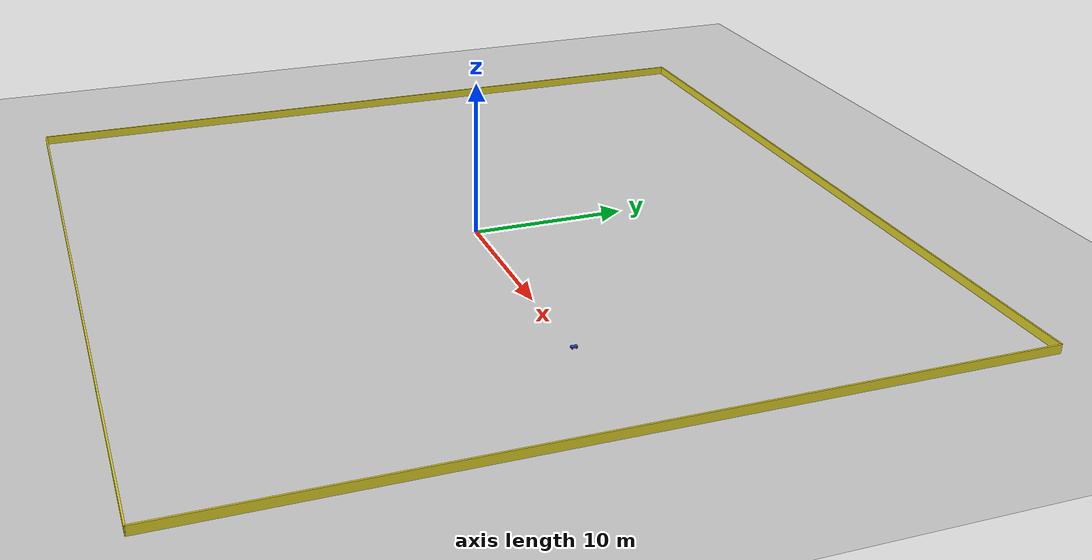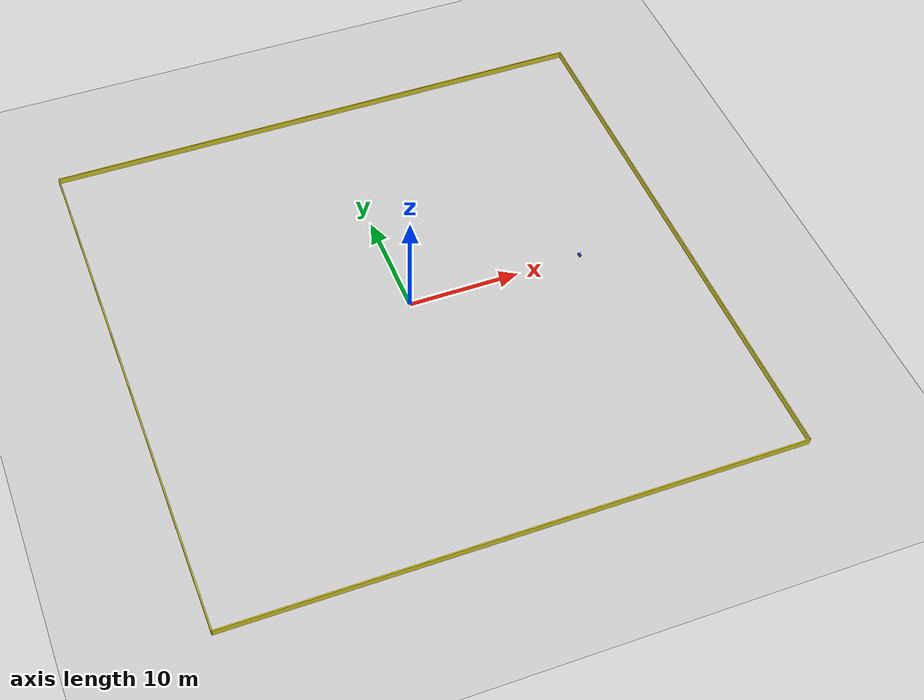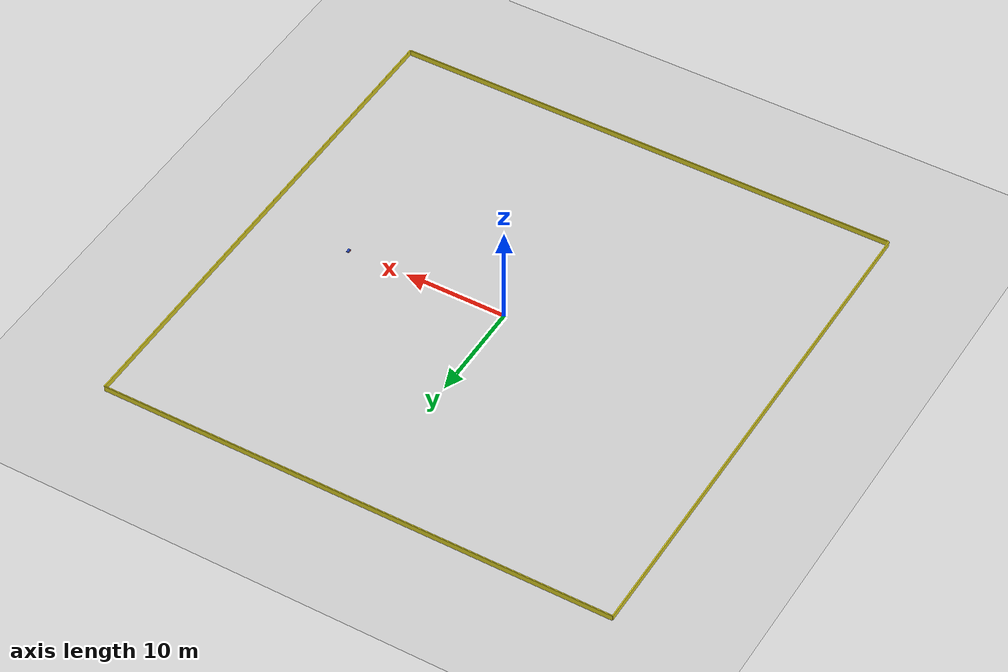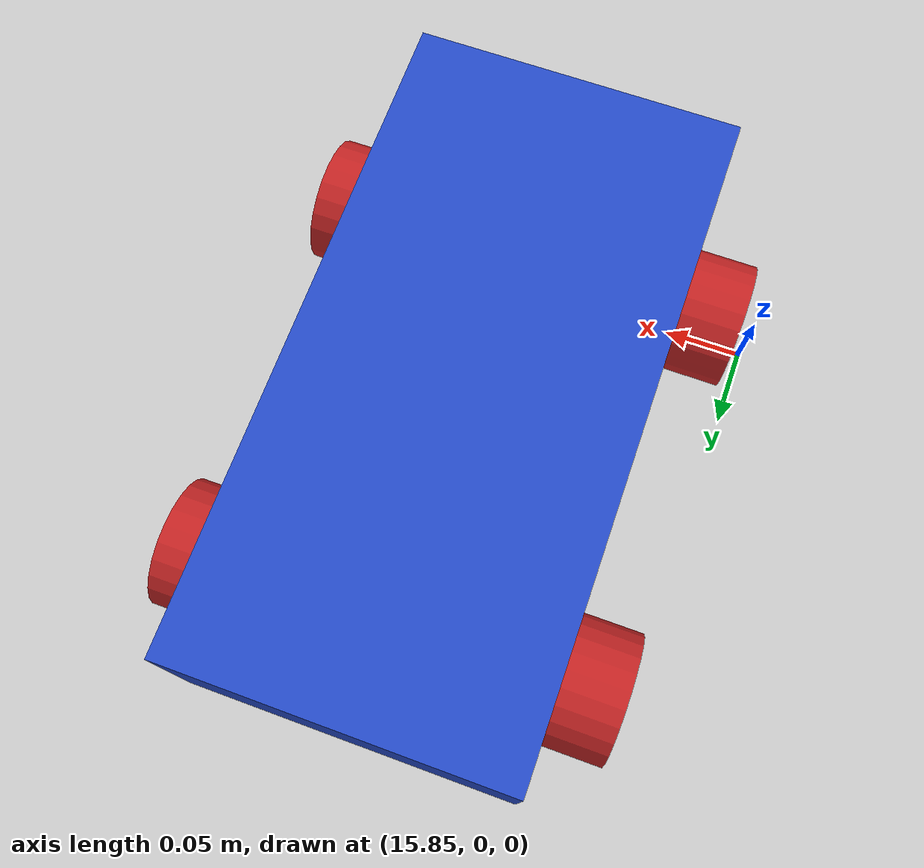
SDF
<sdf version="1.3">
 <world name="default">
  <physics type="ode">
   <gravity>0 0 -1</gravity>
   <ode>
    <solver><type>quick</type><dt>0.001</dt><iters>40</iters><sor>1.0</sor></solver>
    <constraints>
     <cfm>0.0</cfm>
     <erp>0.2</erp>
     <contact_max_correcting_vel>100.0</contact_max_correcting_vel>
     <contact_surface_layer>0.0</contact_surface_layer>
    </constraints>
   </ode>
  </physics>
  <include><uri>model://sun</uri></include>
  <include><uri>model://ground_plane</uri></include>
  <include><uri>file://models/pen</uri></include>
  <include><uri>file://models/predator</uri><pose>16.0 0.125 0 0 0 1.5708</pose></include>
 </world>
</sdf>

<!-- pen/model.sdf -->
<sdf version="1.4">
  <model name="pen">
    <static>true</static>
    <link name="wall1">
      <pose>25.0 0 0 0 0 0</pose>
      <collision name="wall1_col">
        <pose>0 0 0 0 0 0</pose>
        <geometry>
          <box>
            <size>0.1 50.0 1.0</size>
          </box>
        </geometry>
      </collision>
      <visual name="wall1_vis">
        <pose>0 0 0 0 0 0</pose>
        <geometry>
          <box>
            <size>0.1 50.0 1.0</size>
          </box>
        </geometry>
        <material>
          <script>
            <uri>file://media/materials/scripts/gazebo.material</uri>
            <name>Gazebo/Yellow</name>
          </script>
        </material>
      </visual>
    </link>
    <link name="wall2">
      <pose>-25.0 0 0 0 0 0</pose>
      <collision name="wall2_col">
        <pose>0 0 0 0 0 0</pose>
        <geometry>
          <box>
            <size>0.1 50.0 1.0</size>
          </box>
        </geometry>
      </collision>
      <visual name="wall2_vis">
        <pose>0 0 0 0 0 0</pose>
        <geometry>
          <box>
            <size>0.1 50.0 1.0</size>
          </box>
        </geometry>
        <material>
          <script>
            <uri>file://media/materials/scripts/gazebo.material</uri>
            <name>Gazebo/Yellow</name>
          </script>
        </material>
      </visual>
    </link>
    <link name="wall3">
      <pose>0 25.0 0 0 0 0</pose>
      <collision name="wall3_col">
        <pose>0 0 0 0 0 0</pose>
        <geometry>
          <box>
            <size>50.0 0.1 1.0</size>
          </box>
        </geometry>
      </collision>
      <visual name="wall3_vis">
        <pose>0 0 0 0 0 0</pose>
        <geometry>
          <box>
            <size>50.0 0.1 1.0</size>
          </box>
        </geometry>
        <material>
          <script>
            <uri>file://media/materials/scripts/gazebo.material</uri>
            <name>Gazebo/Yellow</name>
          </script>
        </material>
      </visual>
    </link>
    <link name="wall4">
      <pose>0 -25.0 0 0 0 0</pose>
      <collision name="wall1_col">
        <pose>0 0 0 0 0 0</pose>
        <geometry>
          <box>
            <size>50.0 0.1 1.0</size>
          </box>
        </geometry>
      </collision>
      <visual name="wall1_vis">
        <pose>0 0 0 0 0 0</pose>
        <geometry>
          <box>
            <size>50.0 0.1 1.0</size>
          </box>
        </geometry>
        <material>
          <script>
            <uri>file://media/materials/scripts/gazebo.material</uri>
            <name>Gazebo/Yellow</name>
          </script>
        </material>
      </visual>
    </link>
  </model>
</sdf>

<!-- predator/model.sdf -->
<sdf version="1.4">
  <model name="predator">
    <link name="body">
      <pose>0 0 0.09 0 0 0</pose>
      <inertial>
        <pose>0 0 0 0 0 0</pose>
        <inertia>
          <ixx>0.41667</ixx>
          <ixy>0</ixy>
          <ixz>0</ixz>
          <iyy>1.41667</iyy>
          <iyz>0</iyz>
          <izz>1.66667</izz>
        </inertia>
        <mass>100.0</mass>
      </inertial>
      <collision name="body_col">
        <pose>0 0 0 0 0 0</pose>
        <geometry>
          <box>
            <size>0.4 0.2 0.1</size>
          </box>
        </geometry>
      </collision>
      <visual name="body_vis">
        <pose>0 0 0 0 0 0</pose>
        <geometry>
          <box>
            <size>0.4 0.2 0.1</size>
          </box>
        </geometry>
        <material>
          <script>
            <uri>file://media/materials/scripts/gazebo.material</uri>
            <name>Gazebo/Blue</name>
          </script>
        </material>
      </visual>
    </link>
    <link name="rear_driveshaft">
      <pose>-0.125 0 0.04 0 1.5708 0</pose>
    </link>
    <link name="steering_link">
      <pose>0.125 0 0.04 0 1.5708 0</pose>
    </link>
    <link name="spindle_front_left">
      <pose>0.125 0.095 0.04 1.5708 0 0</pose>
    </link>
    <link name="spindle_front_right">
      <pose>0.125 -0.095 0.04 1.5708 0 0</pose>
    </link>
    <link name="wheel_front_left">
      <pose>0.125 0.12 0.04 1.5708 0 0</pose>
      <inertial>
	<pose>0 0 0 0 0 0</pose>
        <inertia>
          <ixx>0.0008</ixx>
          <ixy>0</ixy>
          <ixz>0</ixz>
          <iyy>0.000533</iyy>
          <iyz>0</iyz>
          <izz>0.000533</izz>
        </inertia>
        <mass>1.0</mass>
      </inertial>
      <collision name="wheel_front_left_col">
        <pose>0 0 0 0 0 0</pose>
        <geometry>
          <cylinder>
            <radius>0.04</radius>
            <length>0.04</length>
          </cylinder>
        </geometry>
      </collision>
      <visual name="wheel_front_left_vis">
        <pose>0 0 0 0 0 0</pose>
        <geometry>
          <cylinder>
            <radius>0.04</radius>
            <length>0.04</length>
          </cylinder>
        </geometry>
        <material>
          <script>
            <uri>file://media/materials/scripts/gazebo.material</uri>
            <name>Gazebo/Red</name>
          </script>
        </material>
      </visual>
    </link>
    <link name="wheel_front_right">
      <pose>0.125 -0.12 0.04 1.5708 0 0</pose>
      <inertial>
	<pose>0 0 0 0 0 0</pose>
        <inertia>
          <ixx>0.0008</ixx>
          <ixy>0</ixy>
          <ixz>0</ixz>
          <iyy>0.000533</iyy>
          <iyz>0</iyz>
          <izz>0.000533</izz>
        </inertia>
        <mass>1.0</mass>
      </inertial>
      <collision name="wheel_front_right_col">
        <pose>0 0 0 0 0 0</pose>
        <geometry>
          <cylinder>
            <radius>0.04</radius>
            <length>0.04</length>
          </cylinder>
        </geometry>
      </collision>
      <visual name="wheel_front_right_vis">
        <pose>0 0 0 0 0 0</pose>
        <geometry>
          <cylinder>
            <radius>0.04</radius>
            <length>0.04</length>
          </cylinder>
        </geometry>
        <material>
          <script>
            <uri>file://media/materials/scripts/gazebo.material</uri>
            <name>Gazebo/Red</name>
          </script>
        </material>
      </visual>
    </link>
    <link name="wheel_rear_left">
      <pose>-0.125 0.12 0.04 1.5708 0 0</pose>
      <inertial>
	<pose>0 0 0 0 0 0</pose>
        <inertia>
          <ixx>0.0008</ixx>
          <ixy>0</ixy>
          <ixz>0</ixz>
          <iyy>0.000533</iyy>
          <iyz>0</iyz>
          <izz>0.000533</izz>
        </inertia>
        <mass>1.0</mass>
      </inertial>
      <collision name="wheel_rear_left_col">
        <pose>0 0 0 0 0 0</pose>
        <geometry>
          <cylinder>
            <radius>0.04</radius>
            <length>0.04</length>
          </cylinder>
        </geometry>
      </collision>
      <visual name="wheel_rear_left_vis">
        <pose>0 0 0 0 0 0</pose>
        <geometry>
          <cylinder>
            <radius>0.04</radius>
            <length>0.04</length>
          </cylinder>
        </geometry>
        <material>
          <script>
            <uri>file://media/materials/scripts/gazebo.material</uri>
            <name>Gazebo/Red</name>
          </script>
        </material>
      </visual>
    </link>
    <link name="wheel_rear_right">
      <pose>-0.125 -0.12 0.04 1.5708 0 0</pose>
      <inertial>
	<pose>0 0 0 0 0 0</pose>
        <inertia>
          <ixx>0.0008</ixx>
          <ixy>0</ixy>
          <ixz>0</ixz>
          <iyy>0.000533</iyy>
          <iyz>0</iyz>
          <izz>0.000533</izz>
        </inertia>
        <mass>1.0</mass>
      </inertial>
      <collision name="wheel_rear_right_col">
        <pose>0 0 0 0 0 0</pose>
        <geometry>
          <cylinder>
            <radius>0.04</radius>
            <length>0.04</length>
          </cylinder>
        </geometry>
      </collision>
      <visual name="wheel_rear_right_vis">
        <pose>0 0 0 0 0 0</pose>
        <geometry>
          <cylinder>
            <radius>0.04</radius>
            <length>0.04</length>
          </cylinder>
        </geometry>
        <material>
          <script>
            <uri>file://media/materials/scripts/gazebo.material</uri>
            <name>Gazebo/Red</name>
          </script>
        </material>
      </visual>
    </link>

    <!-- STEERING JOINTS -->
    <joint name="steering_box" type="revolute">
      <parent>body</parent>
      <child>steering_link</child>
      <axis>
        <dynamics>
          <damping>0.000000</damping>
          <friction>0.000000</friction>
        </dynamics>
        <xyz>1 0 0</xyz>
      </axis>
    </joint>
    <joint name="rear_differential" type="revolute">
      <parent>body</parent>
      <child>rear_driveshaft</child>
      <axis>
        <dynamics>
          <damping>0.000000</damping>
          <friction>0.000000</friction>
        </dynamics>
        <xyz>1 0 0</xyz>
      </axis>
    </joint>
    <joint name="kingpin_front_left" type="revolute">
      <parent>body</parent>
      <child>spindle_front_left</child>
      <axis>
        <dynamics>
          <damping>0.000000</damping>
          <friction>0.000000</friction>
        </dynamics>
        <xyz>0 0 1</xyz>
      </axis>
    </joint>
    <joint name="kingpin_front_right" type="revolute">
      <parent>body</parent>
      <child>spindle_front_right</child>
      <axis>
        <dynamics>
          <damping>0.000000</damping>
          <friction>0.000000</friction>
        </dynamics>
        <xyz>0 0 1</xyz>
      </axis>
    </joint>

    <!-- WHEEL BEARINGS -->
    <joint name="bearing_front_left" type="revolute">
      <parent>spindle_front_left</parent>
      <child>wheel_front_left</child>
      <axis>
        <dynamics>
          <damping>0.000000</damping>
          <friction>0.000000</friction>
        </dynamics>
        <xyz>0 1 0</xyz>
      </axis>
    </joint>
    <joint name="bearing_front_right" type="revolute">
      <parent>spindle_front_right</parent>
      <child>wheel_front_right</child>
      <axis>
        <dynamics>
          <damping>0.000000</damping>
          <friction>0.000000</friction>
        </dynamics>
        <xyz>0 1 0</xyz>
      </axis>
    </joint>
    <joint name="bearing_rear_left" type="revolute">
      <parent>body</parent>
      <child>wheel_rear_left</child>
      <axis>
        <dynamics>
          <damping>0.000000</damping>
          <friction>0.000000</friction>
        </dynamics>
        <xyz>0 1 0</xyz>
      </axis>
    </joint>
    <joint name="bearing_rear_right" type="revolute">
      <parent>body</parent>
      <child>wheel_rear_right</child>
      <axis>
        <dynamics>
          <damping>0.000000</damping>
          <friction>0.000000</friction>
        </dynamics>
        <xyz>0 1 0</xyz>
      </axis>
    </joint>
  </model>
</sdf>
